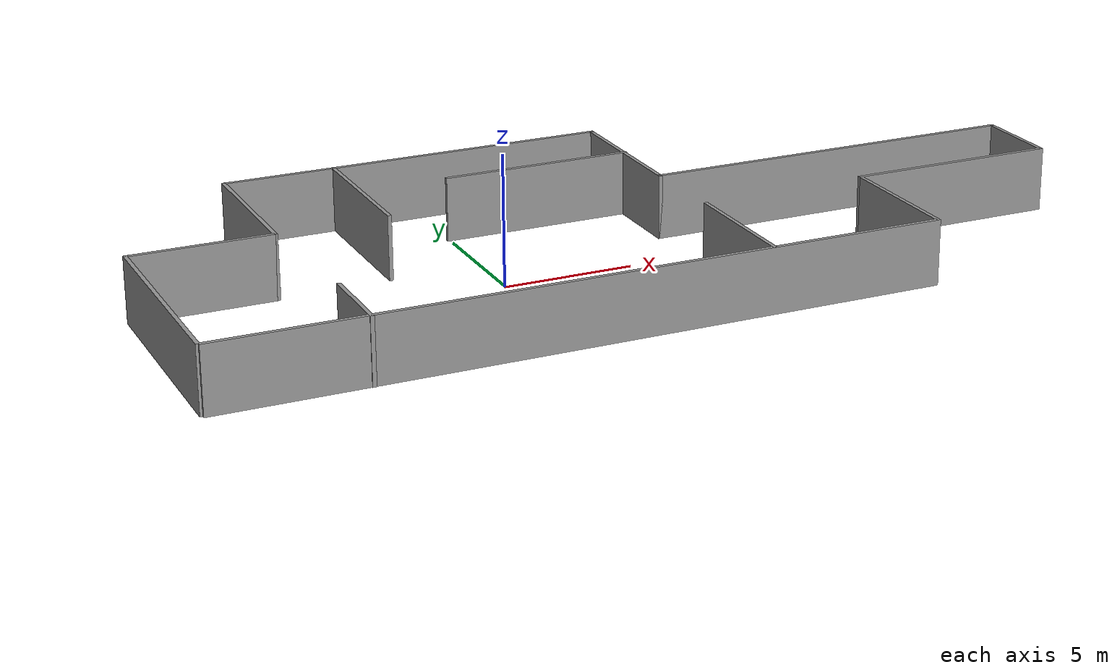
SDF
<?xml version='1.0'?>
<sdf version='1.7'>
  <model name='room'>
    <pose>4.51555 0.941864 0 0 -0 0</pose>
    <link name='Wall_0'>
      <collision name='Wall_0_Collision'>
        <geometry>
          <box>
            <size>8.75 0.15 2.5</size>
          </box>
        </geometry>
        <pose>0 0 1.25 0 -0 0</pose>
      </collision>
      <visual name='Wall_0_Visual'>
        <pose>0 0 1.25 0 -0 0</pose>
        <geometry>
          <box>
            <size>8.75 0.15 2.5</size>
          </box>
        </geometry>
        <material>
          <script>
            <uri>file://media/materials/scripts/gazebo.material</uri>
            <name>Gazebo/Grey</name>
          </script>
          <ambient>1 1 1 1</ambient>
        </material>
        <meta>
          <layer>0</layer>
        </meta>
      </visual>
      <pose>-17.65 -2.9835 0 0 -0 1.5708</pose>
    </link>
    <link name='Wall_1'>
      <collision name='Wall_1_Collision'>
        <geometry>
          <box>
            <size>5.5 0.15 2.5</size>
          </box>
        </geometry>
        <pose>0 0 1.25 0 -0 0</pose>
      </collision>
      <visual name='Wall_1_Visual'>
        <pose>0 0 1.25 0 -0 0</pose>
        <geometry>
          <box>
            <size>5.5 0.15 2.5</size>
          </box>
        </geometry>
        <material>
          <script>
            <uri>file://media/materials/scripts/gazebo.material</uri>
            <name>Gazebo/Grey</name>
          </script>
          <ambient>1 1 1 1</ambient>
        </material>
        <meta>
          <layer>0</layer>
        </meta>
      </visual>
      <pose>-14.975 1.3165 0 0 -0 0</pose>
    </link>
    <link name='Wall_11'>
      <collision name='Wall_11_Collision'>
        <geometry>
          <box>
            <size>6 0.15 2.5</size>
          </box>
        </geometry>
        <pose>0 0 1.25 0 -0 0</pose>
      </collision>
      <visual name='Wall_11_Visual'>
        <pose>0 0 1.25 0 -0 0</pose>
        <geometry>
          <box>
            <size>6 0.15 2.5</size>
          </box>
        </geometry>
        <material>
          <script>
            <uri>file://media/materials/scripts/gazebo.material</uri>
            <name>Gazebo/Grey</name>
          </script>
          <ambient>1 1 1 1</ambient>
        </material>
        <meta>
          <layer>0</layer>
        </meta>
      </visual>
      <pose>-7.99413 4.39501 0 0 -0 -1.5708</pose>
    </link>
    <link name='Wall_13'>
      <collision name='Wall_13_Collision'>
        <geometry>
          <box>
            <size>7.5 0.15 2.5</size>
          </box>
        </geometry>
        <pose>0 0 1.25 0 -0 0</pose>
      </collision>
      <visual name='Wall_13_Visual'>
        <pose>0 0 1.25 0 -0 0</pose>
        <geometry>
          <box>
            <size>7.5 0.15 2.5</size>
          </box>
        </geometry>
        <material>
          <script>
            <uri>file://media/materials/scripts/gazebo.material</uri>
            <name>Gazebo/Grey</name>
          </script>
          <ambient>1 1 1 1</ambient>
        </material>
        <meta>
          <layer>0</layer>
        </meta>
      </visual>
      <pose>-0.842847 4.47379 0 0 -0 3.14159</pose>
    </link>
    <link name='Wall_16'>
      <collision name='Wall_16_Collision'>
        <geometry>
          <box>
            <size>5.25 0.15 2.5</size>
          </box>
        </geometry>
        <pose>0 0 1.25 0 -0 0</pose>
      </collision>
      <visual name='Wall_16_Visual'>
        <pose>0 0 1.25 0 -0 0</pose>
        <geometry>
          <box>
            <size>5.25 0.15 2.5</size>
          </box>
        </geometry>
        <material>
          <script>
            <uri>file://media/materials/scripts/gazebo.material</uri>
            <name>Gazebo/Grey</name>
          </script>
          <ambient>1 1 1 1</ambient>
        </material>
        <meta>
          <layer>0</layer>
        </meta>
      </visual>
      <pose>2.91195 -4.8133 0 0 -0 1.5708</pose>
    </link>
    <link name='Wall_19'>
      <collision name='Wall_19_Collision'>
        <geometry>
          <box>
            <size>3.25 0.15 2.5</size>
          </box>
        </geometry>
        <pose>0 0 1.25 0 -0 0</pose>
      </collision>
      <visual name='Wall_19_Visual'>
        <pose>0 0 1.25 0 -0 0</pose>
        <geometry>
          <box>
            <size>3.25 0.15 2.5</size>
          </box>
        </geometry>
        <material>
          <script>
            <uri>file://media/materials/scripts/gazebo.material</uri>
            <name>Gazebo/Grey</name>
          </script>
          <ambient>1 1 1 1</ambient>
        </material>
        <meta>
          <layer>0</layer>
        </meta>
      </visual>
      <pose>-11.9044 -5.8665 0 0 -0 1.5708</pose>
    </link>
    <link name='Wall_2'>
      <collision name='Wall_2_Collision'>
        <geometry>
          <box>
            <size>6.25 0.15 2.5</size>
          </box>
        </geometry>
        <pose>0 0 1.25 0 -0 0</pose>
      </collision>
      <visual name='Wall_2_Visual'>
        <pose>0 0 1.25 0 -0 0</pose>
        <geometry>
          <box>
            <size>6.25 0.15 2.5</size>
          </box>
        </geometry>
        <material>
          <script>
            <uri>file://media/materials/scripts/gazebo.material</uri>
            <name>Gazebo/Grey</name>
          </script>
          <ambient>1 1 1 1</ambient>
        </material>
        <meta>
          <layer>0</layer>
        </meta>
      </visual>
      <pose>-12.3 4.3665 0 0 -0 1.5708</pose>
    </link>
    <link name='Wall_3'>
      <collision name='Wall_3_Collision'>
        <geometry>
          <box>
            <size>15.25 0.15 2.5</size>
          </box>
        </geometry>
        <pose>0 0 1.25 0 -0 0</pose>
      </collision>
      <visual name='Wall_3_Visual'>
        <pose>0 0 1.25 0 -0 0</pose>
        <geometry>
          <box>
            <size>15.25 0.15 2.5</size>
          </box>
        </geometry>
        <material>
          <script>
            <uri>file://media/materials/scripts/gazebo.material</uri>
            <name>Gazebo/Grey</name>
          </script>
          <ambient>1 1 1 1</ambient>
        </material>
        <meta>
          <layer>0</layer>
        </meta>
      </visual>
      <pose>-4.75 7.4165 0 0 -0 0</pose>
    </link>
    <link name='Wall_4'>
      <collision name='Wall_4_Collision'>
        <geometry>
          <box>
            <size>6.25 0.15 2.5</size>
          </box>
        </geometry>
        <pose>0 0 1.25 0 -0 0</pose>
      </collision>
      <visual name='Wall_4_Visual'>
        <pose>0 0 1.25 0 -0 0</pose>
        <geometry>
          <box>
            <size>6.25 0.15 2.5</size>
          </box>
        </geometry>
        <material>
          <script>
            <uri>file://media/materials/scripts/gazebo.material</uri>
            <name>Gazebo/Grey</name>
          </script>
          <ambient>1 1 1 1</ambient>
        </material>
        <meta>
          <layer>0</layer>
        </meta>
      </visual>
      <pose>2.8 4.3665 0 0 -0 -1.5708</pose>
    </link>
    <link name='Wall_5'>
      <collision name='Wall_5_Collision'>
        <geometry>
          <box>
            <size>15 0.15 2.5</size>
          </box>
        </geometry>
        <pose>0 0 1.25 0 -0 0</pose>
      </collision>
      <visual name='Wall_5_Visual'>
        <pose>0 0 1.25 0 -0 0</pose>
        <geometry>
          <box>
            <size>15 0.15 2.5</size>
          </box>
        </geometry>
        <material>
          <script>
            <uri>file://media/materials/scripts/gazebo.material</uri>
            <name>Gazebo/Grey</name>
          </script>
          <ambient>1 1 1 1</ambient>
        </material>
        <meta>
          <layer>0</layer>
        </meta>
      </visual>
      <pose>10.225 1.3165 0 0 -0 0</pose>
    </link>
    <link name='Wall_6'>
      <collision name='Wall_6_Collision'>
        <geometry>
          <box>
            <size>3.5 0.15 2.5</size>
          </box>
        </geometry>
        <pose>0 0 1.25 0 -0 0</pose>
      </collision>
      <visual name='Wall_6_Visual'>
        <pose>0 0 1.25 0 -0 0</pose>
        <geometry>
          <box>
            <size>3.5 0.15 2.5</size>
          </box>
        </geometry>
        <material>
          <script>
            <uri>file://media/materials/scripts/gazebo.material</uri>
            <name>Gazebo/Grey</name>
          </script>
          <ambient>1 1 1 1</ambient>
        </material>
        <meta>
          <layer>0</layer>
        </meta>
      </visual>
      <pose>17.65 -0.3585 0 0 -0 -1.5708</pose>
    </link>
    <link name='Wall_7'>
      <collision name='Wall_7_Collision'>
        <geometry>
          <box>
            <size>8.25 0.15 2.5</size>
          </box>
        </geometry>
        <pose>0 0 1.25 0 -0 0</pose>
      </collision>
      <visual name='Wall_7_Visual'>
        <pose>0 0 1.25 0 -0 0</pose>
        <geometry>
          <box>
            <size>8.25 0.15 2.5</size>
          </box>
        </geometry>
        <material>
          <script>
            <uri>file://media/materials/scripts/gazebo.material</uri>
            <name>Gazebo/Grey</name>
          </script>
          <ambient>1 1 1 1</ambient>
        </material>
        <meta>
          <layer>0</layer>
        </meta>
      </visual>
      <pose>13.6 -2.0335 0 0 -0 3.14159</pose>
    </link>
    <link name='Wall_8'>
      <collision name='Wall_8_Collision'>
        <geometry>
          <box>
            <size>5.5 0.15 2.5</size>
          </box>
        </geometry>
        <pose>0 0 1.25 0 -0 0</pose>
      </collision>
      <visual name='Wall_8_Visual'>
        <pose>0 0 1.25 0 -0 0</pose>
        <geometry>
          <box>
            <size>5.5 0.15 2.5</size>
          </box>
        </geometry>
        <material>
          <script>
            <uri>file://media/materials/scripts/gazebo.material</uri>
            <name>Gazebo/Grey</name>
          </script>
          <ambient>1 1 1 1</ambient>
        </material>
        <meta>
          <layer>0</layer>
        </meta>
      </visual>
      <pose>9.55 -4.7085 0 0 -0 -1.5708</pose>
    </link>
    <link name='Wall_9'>
      <collision name='Wall_9_Collision'>
        <geometry>
          <box>
            <size>27.25 0.15 2.5</size>
          </box>
        </geometry>
        <pose>0 0 1.25 0 -0 0</pose>
      </collision>
      <visual name='Wall_9_Visual'>
        <pose>0 0 1.25 0 -0 0</pose>
        <geometry>
          <box>
            <size>27.25 0.15 2.5</size>
          </box>
        </geometry>
        <material>
          <script>
            <uri>file://media/materials/scripts/gazebo.material</uri>
            <name>Gazebo/Grey</name>
          </script>
          <ambient>1 1 1 1</ambient>
        </material>
        <meta>
          <layer>0</layer>
        </meta>
      </visual>
      <pose>-4 -7.3835 0 0 -0 3.14159</pose>
    </link>
    <static>1</static>
  </model>
</sdf>
